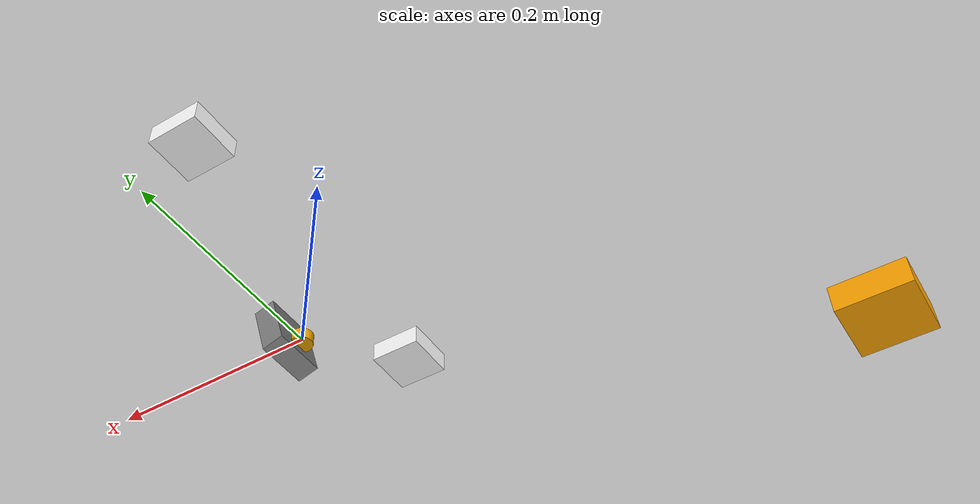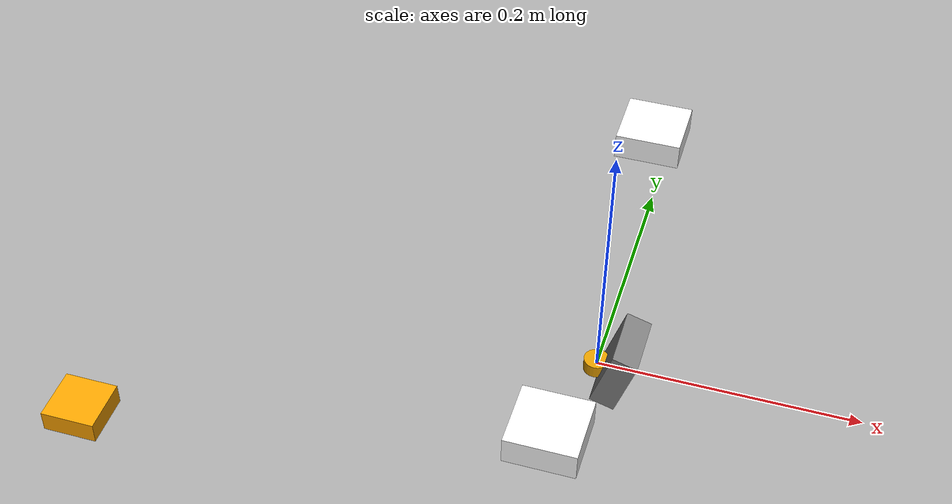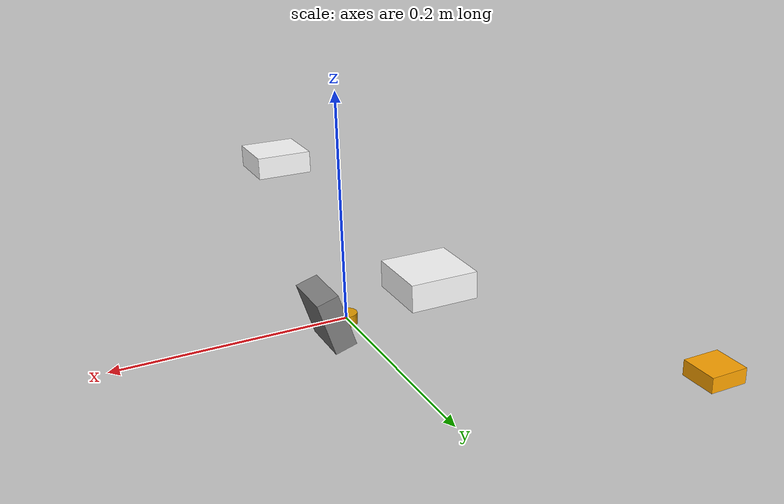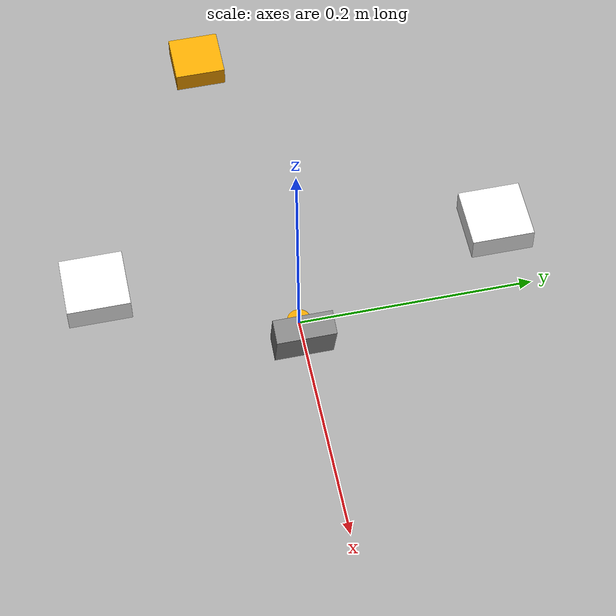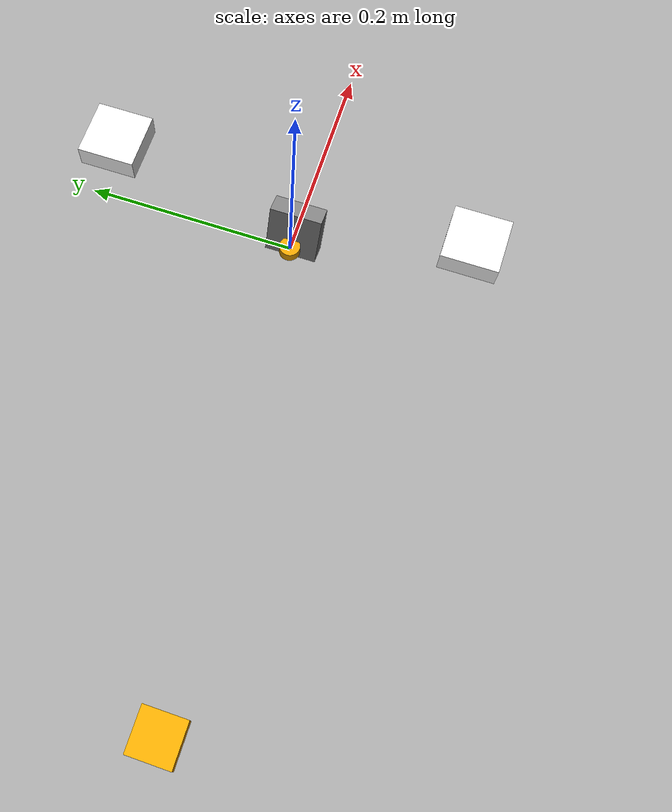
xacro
<?xml version="1.0"?>
<robot xmlns:xacro="http://www.ros.org/wiki/xacro" name="sensor_frames">

  <link name="/base_camera_link">
    <visual>
      <geometry>
        <cylinder length="0.01" radius="0.01"/>
      </geometry>
    </visual>
  </link>

  <xacro:arg name="robot_name" default=""/>
  <xacro:arg name="tf_prefix" default=""/>

  <!--Camera-->
    <xacro:property name="M_PI" value="3.1415926535897931" />

    <!-- The following values are approximate, and the camera node
     publishing TF values with actual calibrated camera extrinsic values -->
    <xacro:property name="d435_cam_depth_to_left_ir_offset" value="0.0"/>
    <xacro:property name="d435_cam_depth_to_right_ir_offset" value="-0.050"/>
    <xacro:property name="d435_cam_depth_to_color_offset" value="0.015"/>

    <!-- The following values model the aluminum peripherial case for the
  	D435 camera, with the camera joint represented by the actual
  	peripherial camera tripod mount -->
    <xacro:property name="d435_cam_width" value="0.090"/>
    <xacro:property name="d435_cam_height" value="0.025"/>
    <xacro:property name="d435_cam_depth" value="0.02505"/>
    <xacro:property name="d435_cam_mount_from_center_offset" value="0.0149"/>

    <!-- The following offset is relative the the physical D435 camera peripherial
  	camera tripod mount -->
    <xacro:property name="d435_cam_depth_px" value="${d435_cam_mount_from_center_offset}"/>
    <xacro:property name="d435_cam_depth_py" value="0.0175"/>
    <xacro:property name="d435_cam_depth_pz" value="${d435_cam_height/2}"/>

    <material name="aluminum">
	   <color rgba="0.5 0.5 0.5 1"/>
    </material>

    <!-- camera body, with origin at bottom screw mount -->
    <link name="$(arg tf_prefix)/camera_bottom_screw_frame"/>

    <joint name="camera_joint" type="fixed">
      <parent link="$(arg tf_prefix)/base_camera_link"/>
      <child link="$(arg tf_prefix)/camera_bottom_screw_frame" />
      <origin xyz="0 0 0" rpy="0 0.2942 0" />
    </joint>

    <link name="$(arg tf_prefix)/camera_link">
      <visual>
      <origin xyz="${d435_cam_mount_from_center_offset} ${-d435_cam_depth_py} 0" rpy="${M_PI/2} 0 ${M_PI/2}"/>
        <geometry>
        <box size="0.05 0.05 0.02"/>
      </geometry>
          <!--mesh filename="package://rasberry_agricultural_costmaps/meshes/d435.dae" /-->
        <!--/geometry-->
        <material name="aluminum"/>
      </visual>
      <collision>
        <origin xyz="0 ${-d435_cam_depth_py} 0" rpy="0 0 0"/>
        <geometry>
        <box size="${d435_cam_depth} ${d435_cam_width} ${d435_cam_height}"/>
        </geometry>
      </collision>
      <inertial>
        <!-- The following are not reliable values, and should not be used for modeling -->
        <mass value="0.564" />
        <origin xyz="0 0 0" />
        <inertia ixx="0.003881243" ixy="0.0" ixz="0.0" iyy="0.000498940" iyz="0.0" izz="0.003879257" />
      </inertial>
    </link>

    <joint name="camera_link_joint" type="fixed">
    <origin xyz="0 ${d435_cam_depth_py} ${d435_cam_depth_pz}" rpy="0 0 0"/>
    <parent link="$(arg tf_prefix)/camera_bottom_screw_frame"/>
    <child link="$(arg tf_prefix)/camera_link" />
    </joint>

    <!-- camera depth joints and links -->
    <link name="$(arg tf_prefix)/camera_depth_frame"/>

    <joint name="camera_depth_joint" type="fixed">
     <origin xyz="0 0 0" rpy="0 0 0"/>
     <parent link="$(arg tf_prefix)/camera_link"/>
     <child link="$(arg tf_prefix)/camera_depth_frame" />
    </joint>

    <link name="$(arg tf_prefix)/camera_depth_optical_frame"/>

    <joint name="camera_depth_optical_joint" type="fixed">
     <origin xyz="0 0 0" rpy="${-M_PI/2} 0 ${-M_PI/2}" />
     <parent link="$(arg tf_prefix)/camera_depth_frame" />
     <child link="$(arg tf_prefix)/camera_depth_optical_frame" />
    </joint>

    <!-- camera color joints and links -->
    <link name="$(arg tf_prefix)/camera_color_frame"/>

    <joint name="camera_color_joint" type="fixed">
     <origin xyz="0 ${d435_cam_depth_to_color_offset} 0" rpy="0 0 0" />
     <parent link="$(arg tf_prefix)/camera_depth_frame" />
     <child link="$(arg tf_prefix)/camera_color_frame" />
    </joint>

    <link name="$(arg tf_prefix)/camera_color_optical_frame"/>

    <joint name="camera_color_optical_joint" type="fixed">
     <origin xyz="0.1 0 0" rpy="${-M_PI/2} 0 ${-M_PI/2}" />
     <parent link="$(arg tf_prefix)/camera_color_frame" />
     <child link="$(arg tf_prefix)/camera_color_optical_frame" />
    </joint>

    <!--GNSS-->

    <!--Master Antenna-->
    <link name="$(arg tf_prefix)/gps_1">
    <visual>
        <geometry>
          <box size="0.05 0.05 0.02"/>
        </geometry>
        <material name="white">
          <color rgba="1.0 1.0 1.0 1.0"/>
        </material>
      </visual>
    </link>

    <joint name="center_to_gps_1" type="fixed">
      <parent link="$(arg tf_prefix)/base_camera_link"/>
      <child link="$(arg tf_prefix)/gps_1"/>
      <origin xyz="0 0.1615 0.1"/>
    </joint>

    <!--Slave Antenna-->
    <link name="$(arg tf_prefix)/gps_2">
    <visual>
        <geometry>
          <box size="0.05 0.05 0.02"/>
        </geometry>
        <material name="white">
          <color rgba="1.0 1.0 1.0 1.0"/>
        </material>
      </visual>
    </link>

    <joint name="center_to_gps_2" type="fixed">
      <parent link="$(arg tf_prefix)/base_camera_link"/>
      <child link="$(arg tf_prefix)/gps_2"/>
      <origin xyz="0 -0.1615 0.1"/>
    </joint>

    <!--IMU-->
    <link name="$(arg tf_prefix)/xsens">
    <visual>
        <geometry>
          <box size="0.05 0.05 0.02"/>
        </geometry>
        <material name="orange">
          <color rgba="1.0 0.645 0.0 1.0"/>
        </material>
    </visual>
    </link>

    <joint name="center_to_xsens" type="fixed">
      <parent link="$(arg tf_prefix)/base_camera_link"/>
      <child link="$(arg tf_prefix)/xsens"/>
      <origin xyz="-0.4545 -0.0183 -0.1850" rpy="0 0 0"/>
    </joint>

 </robot>
